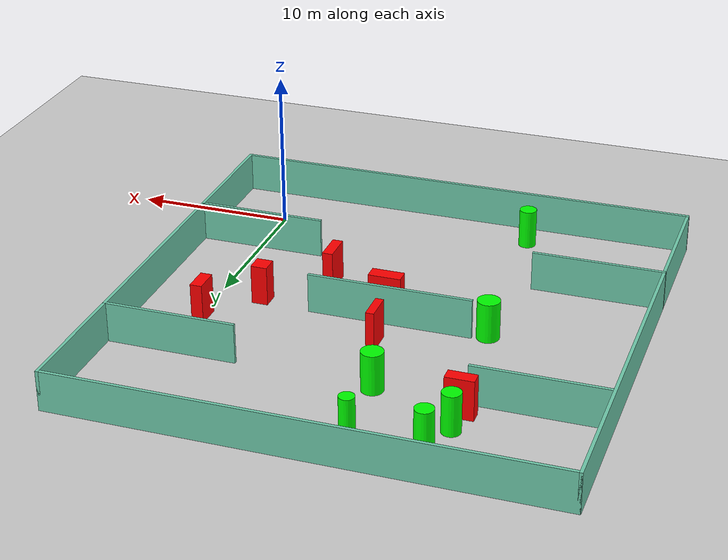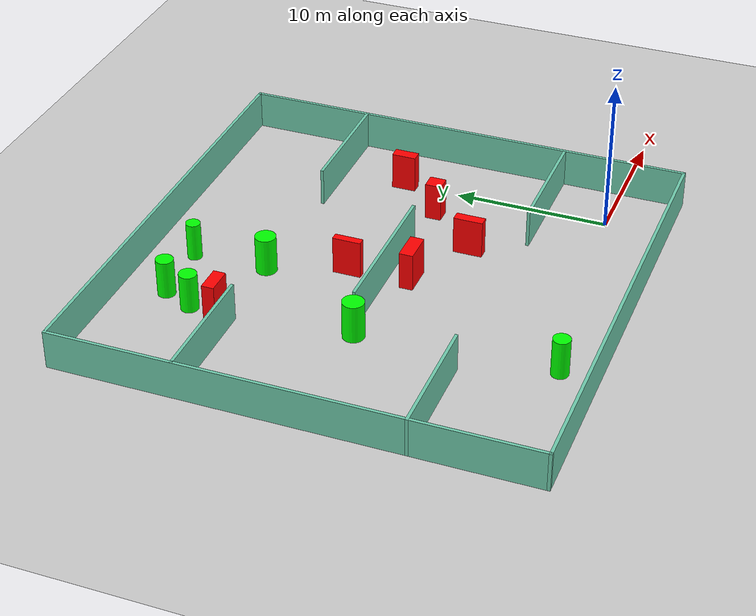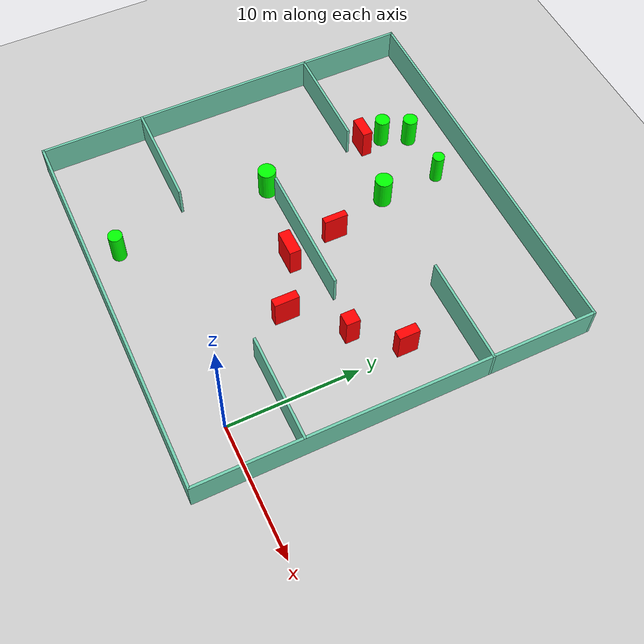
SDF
<sdf version="1.7">
 <world name="default">
  <light name="sun" type="directional">
   <pose>0 0 10 0 -0 0</pose>
   <diffuse>0.8 0.8 0.8 1</diffuse>
   <specular>0.2 0.2 0.2 1</specular>
   <attenuation>
    <range>1000</range>
    <constant>0.9</constant>
    <linear>0.01</linear>
    <quadratic>0.001</quadratic>
   </attenuation>
   <direction>-0.5 0.1 -0.9</direction>
   <spot><inner_angle>0</inner_angle><outer_angle>0</outer_angle><falloff>0</falloff></spot>
  </light>
  <model name="ground_plane">
   <static>1</static>
   <link name="link">
    <collision name="collision">
     <geometry><plane><normal>0 0 1</normal><size>100 100</size></plane></geometry>
     <surface>
      <contact><collide_bitmask>65535</collide_bitmask></contact>
      <friction><ode><mu>100</mu><mu2>50</mu2></ode></friction>
     </surface>
    </collision>
    <visual name="visual">
     <cast_shadows>0</cast_shadows>
     <geometry><plane><normal>0 0 1</normal><size>100 100</size></plane></geometry>
     <material>
      <script><uri>file://media/materials/scripts/gazebo.material</uri><name>Gazebo/Grey</name></script>
     </material>
    </visual>
   </link>
  </model>
  <gravity>0 0 -9.8</gravity>
  <magnetic_field>6e-06 2.3e-05 -4.2e-05</magnetic_field>
  <atmosphere type="adiabatic"/>
  <physics type="ode">
   <max_step_size>0.001</max_step_size>
   <real_time_factor>1</real_time_factor>
   <real_time_update_rate>1000</real_time_update_rate>
  </physics>
  <scene><ambient>0.4 0.4 0.4 1</ambient><background>0.7 0.7 0.7 1</background><shadows>1</shadows></scene>
  <spherical_coordinates>
   <surface_model>EARTH_WGS84</surface_model>
   <latitude_deg>0</latitude_deg>
   <longitude_deg>0</longitude_deg>
   <elevation>0</elevation>
   <heading_deg>0</heading_deg>
  </spherical_coordinates>
  <model name="my_base_walls">
   <link name="Wall_10">
    <collision name="Wall_10_Collision">
     <geometry><box><size>8.2 0.2 2.5</size></box></geometry>
     <pose>0 0 1.25 0 -0 0</pose>
    </collision>
    <visual name="Wall_10_Visual">
     <pose>0 0 1.25 0 -0 0</pose>
     <geometry><box><size>8.2 0.2 2.5</size></box></geometry>
     <material>
      <script><uri>file://media/materials/scripts/gazebo.material</uri><name>Gazebo/Grey</name></script>
      <ambient>0.435294 0.796078 0.67451 1</ambient>
     </material>
     <meta><layer>0</layer></meta>
    </visual>
    <pose>-11 -7 0 0 -0 0</pose>
   </link>
   <link name="Wall_12">
    <collision name="Wall_12_Collision">
     <geometry><box><size>8.2 0.2 2.5</size></box></geometry>
     <pose>0 0 1.25 0 -0 0</pose>
    </collision>
    <visual name="Wall_12_Visual">
     <pose>0 0 1.25 0 -0 0</pose>
     <geometry><box><size>8.2 0.2 2.5</size></box></geometry>
     <material>
      <script><uri>file://media/materials/scripts/gazebo.material</uri><name>Gazebo/Grey</name></script>
      <ambient>0.435294 0.796078 0.67451 1</ambient>
     </material>
     <meta><layer>0</layer></meta>
    </visual>
    <pose>-11 7 0 0 -0 0</pose>
   </link>
   <link name="Wall_14">
    <collision name="Wall_14_Collision">
     <geometry><box><size>8.2 0.2 2.5</size></box></geometry>
     <pose>0 0 1.25 0 -0 0</pose>
    </collision>
    <visual name="Wall_14_Visual">
     <pose>0 0 1.25 0 -0 0</pose>
     <geometry><box><size>8.2 0.2 2.5</size></box></geometry>
     <material>
      <script><uri>file://media/materials/scripts/gazebo.material</uri><name>Gazebo/Grey</name></script>
      <ambient>0.435294 0.796078 0.67451 1</ambient>
     </material>
     <meta><layer>0</layer></meta>
    </visual>
    <pose>11 7 0 0 -0 3.14159</pose>
   </link>
   <link name="Wall_16">
    <collision name="Wall_16_Collision">
     <geometry><box><size>10.2 0.2 2.5</size></box></geometry>
     <pose>0 0 1.25 0 -0 0</pose>
    </collision>
    <visual name="Wall_16_Visual">
     <pose>0 0 1.25 0 -0 0</pose>
     <geometry><box><size>10.2 0.2 2.5</size></box></geometry>
     <material>
      <script><uri>file://media/materials/scripts/gazebo.material</uri><name>Gazebo/Grey</name></script>
      <ambient>0.435294 0.796078 0.67451 1</ambient>
     </material>
     <meta><layer>0</layer></meta>
    </visual>
    <pose>0 0 0 0 -0 3.14159</pose>
   </link>
   <link name="Wall_2">
    <collision name="Wall_2_Collision">
     <geometry><box><size>30.2 0.2 2.5</size></box></geometry>
     <pose>0 0 1.25 0 -0 0</pose>
    </collision>
    <visual name="Wall_2_Visual">
     <pose>0 0 1.25 0 -0 0</pose>
     <geometry><box><size>30.2 0.2 2.5</size></box></geometry>
     <material>
      <script><uri>file://media/materials/scripts/gazebo.material</uri><name>Gazebo/Grey</name></script>
      <ambient>0.435294 0.796078 0.67451 1</ambient>
     </material>
     <meta><layer>0</layer></meta>
    </visual>
    <pose>0 -15 0 0 -0 3.14159</pose>
   </link>
   <link name="Wall_3">
    <collision name="Wall_3_Collision">
     <geometry><box><size>30.2 0.2 2.5</size></box></geometry>
     <pose>0 0 1.25 0 -0 0</pose>
    </collision>
    <visual name="Wall_3_Visual">
     <pose>0 0 1.25 0 -0 0</pose>
     <geometry><box><size>30.2 0.2 2.5</size></box></geometry>
     <material>
      <script><uri>file://media/materials/scripts/gazebo.material</uri><name>Gazebo/Grey</name></script>
      <ambient>0.435294 0.796078 0.67451 1</ambient>
     </material>
     <meta><layer>0</layer></meta>
    </visual>
    <pose>-15 0 0 0 -0 1.5708</pose>
   </link>
   <link name="Wall_4">
    <collision name="Wall_4_Collision">
     <geometry><box><size>30.2 0.2 2.5</size></box></geometry>
     <pose>0 0 1.25 0 -0 0</pose>
    </collision>
    <visual name="Wall_4_Visual">
     <pose>0 0 1.25 0 -0 0</pose>
     <geometry><box><size>30.2 0.2 2.5</size></box></geometry>
     <material>
      <script><uri>file://media/materials/scripts/gazebo.material</uri><name>Gazebo/Grey</name></script>
      <ambient>0.435294 0.796078 0.67451 1</ambient>
     </material>
     <meta><layer>0</layer></meta>
    </visual>
    <pose>0 15 0 0 -0 0</pose>
   </link>
   <link name="Wall_6">
    <collision name="Wall_6_Collision">
     <geometry><box><size>30.2 0.2 2.5</size></box></geometry>
     <pose>0 0 1.25 0 -0 0</pose>
    </collision>
    <visual name="Wall_6_Visual">
     <pose>0 0 1.25 0 -0 0</pose>
     <geometry><box><size>30.2 0.2 2.5</size></box></geometry>
     <material>
      <script><uri>file://media/materials/scripts/gazebo.material</uri><name>Gazebo/Grey</name></script>
      <ambient>0.435294 0.796078 0.67451 1</ambient>
     </material>
     <meta><layer>0</layer></meta>
    </visual>
    <pose>15 0 0 0 -0 1.5708</pose>
   </link>
   <link name="Wall_8">
    <collision name="Wall_8_Collision">
     <geometry><box><size>8.2 0.2 2.5</size></box></geometry>
     <pose>0 0 1.25 0 -0 0</pose>
    </collision>
    <visual name="Wall_8_Visual">
     <pose>0 0 1.25 0 -0 0</pose>
     <geometry><box><size>8.2 0.2 2.5</size></box></geometry>
     <material>
      <script><uri>file://media/materials/scripts/gazebo.material</uri><name>Gazebo/Grey</name></script>
      <ambient>0.435294 0.796078 0.67451 1</ambient>
     </material>
     <meta><layer>0</layer></meta>
    </visual>
    <pose>11 -7 0 0 -0 3.14159</pose>
   </link>
   <static>1</static>
   <pose>-11 11 0 0 -0 0</pose>
  </model>
  <model name="cylinder1">
   <static>1</static>
   <link name="link">
    <inertial>
     <mass>1</mass>
     <inertia><ixx>0.5</ixx><ixy>0</ixy><ixz>0</ixz><iyy>0.5</iyy><iyz>0</iyz><izz>1</izz></inertia>
    </inertial>
    <collision name="collision">
     <geometry><cylinder><radius>0.5723667406691992</radius><length>2.5</length></cylinder></geometry>
    </collision>
    <visual name="visual">
     <geometry><cylinder><radius>0.5723667406691992</radius><length>2.5</length></cylinder></geometry>
     <material>
      <ambient>0 1 0 1</ambient>
      <diffuse>0 1 0 1</diffuse>
      <specular>0.1 0.1 0.1 1</specular>
      <emissive>0 0 0 0</emissive>
     </material>
    </visual>
   </link>
   <pose>-17.83094878240328 20.956606415255205 1.25 0 0 0</pose>
  </model>
  <model name="cylinder2">
   <static>1</static>
   <link name="link">
    <inertial>
     <mass>1</mass>
     <inertia><ixx>0.5</ixx><ixy>0</ixy><ixz>0</ixz><iyy>0.5</iyy><iyz>0</iyz><izz>1</izz></inertia>
    </inertial>
    <collision name="collision">
     <geometry><cylinder><radius>0.5457131854601444</radius><length>2.5</length></cylinder></geometry>
    </collision>
    <visual name="visual">
     <geometry><cylinder><radius>0.5457131854601444</radius><length>2.5</length></cylinder></geometry>
     <material>
      <ambient>0 1 0 1</ambient>
      <diffuse>0 1 0 1</diffuse>
      <specular>0.1 0.1 0.1 1</specular>
      <emissive>0 0 0 0</emissive>
     </material>
    </visual>
   </link>
   <pose>-16.157404501856714 -1.7006996450574166 1.25 0 0 0</pose>
  </model>
  <model name="cylinder3">
   <static>1</static>
   <link name="link">
    <inertial>
     <mass>1</mass>
     <inertia><ixx>0.5</ixx><ixy>0</ixy><ixz>0</ixz><iyy>0.5</iyy><iyz>0</iyz><izz>1</izz></inertia>
    </inertial>
    <collision name="collision">
     <geometry><cylinder><radius>0.5649935560441588</radius><length>2.5</length></cylinder></geometry>
    </collision>
    <visual name="visual">
     <geometry><cylinder><radius>0.5649935560441588</radius><length>2.5</length></cylinder></geometry>
     <material>
      <ambient>0 1 0 1</ambient>
      <diffuse>0 1 0 1</diffuse>
      <specular>0.1 0.1 0.1 1</specular>
      <emissive>0 0 0 0</emissive>
     </material>
    </visual>
   </link>
   <pose>-16.937955296544807 22.9434609851686 1.25 0 0 0</pose>
  </model>
  <model name="cylinder4">
   <static>1</static>
   <link name="link">
    <inertial>
     <mass>1</mass>
     <inertia><ixx>0.5</ixx><ixy>0</ixy><ixz>0</ixz><iyy>0.5</iyy><iyz>0</iyz><izz>1</izz></inertia>
    </inertial>
    <collision name="collision">
     <geometry><cylinder><radius>0.6965615054128117</radius><length>2.5</length></cylinder></geometry>
    </collision>
    <visual name="visual">
     <geometry><cylinder><radius>0.6965615054128117</radius><length>2.5</length></cylinder></geometry>
     <material>
      <ambient>0 1 0 1</ambient>
      <diffuse>0 1 0 1</diffuse>
      <specular>0.1 0.1 0.1 1</specular>
      <emissive>0 0 0 0</emissive>
     </material>
    </visual>
   </link>
   <pose>-16.996791429069496 10.682363763615388 1.25 0 0 0</pose>
  </model>
  <model name="cylinder5">
   <static>1</static>
   <link name="link">
    <inertial>
     <mass>1</mass>
     <inertia><ixx>0.5</ixx><ixy>0</ixy><ixz>0</ixz><iyy>0.5</iyy><iyz>0</iyz><izz>1</izz></inertia>
    </inertial>
    <collision name="collision">
     <geometry><cylinder><radius>0.4653747245758605</radius><length>2.5</length></cylinder></geometry>
    </collision>
    <visual name="visual">
     <geometry><cylinder><radius>0.4653747245758605</radius><length>2.5</length></cylinder></geometry>
     <material>
      <ambient>0 1 0 1</ambient>
      <diffuse>0 1 0 1</diffuse>
      <specular>0.1 0.1 0.1 1</specular>
      <emissive>0 0 0 0</emissive>
     </material>
    </visual>
   </link>
   <pose>-12.691642339403028 23.097410796167026 1.25 0 0 0</pose>
  </model>
  <model name="cylinder6">
   <static>1</static>
   <link name="link">
    <inertial>
     <mass>1</mass>
     <inertia><ixx>0.5</ixx><ixy>0</ixy><ixz>0</ixz><iyy>0.5</iyy><iyz>0</iyz><izz>1</izz></inertia>
    </inertial>
    <collision name="collision">
     <geometry><cylinder><radius>0.6730894793537588</radius><length>2.5</length></cylinder></geometry>
    </collision>
    <visual name="visual">
     <geometry><cylinder><radius>0.6730894793537588</radius><length>2.5</length></cylinder></geometry>
     <material>
      <ambient>0 1 0 1</ambient>
      <diffuse>0 1 0 1</diffuse>
      <specular>0.1 0.1 0.1 1</specular>
      <emissive>0 0 0 0</emissive>
     </material>
    </visual>
   </link>
   <pose>-12.461182631007834 18.289677967634386 1.25 0 0 0</pose>
  </model>
  <model name="box1">
   <static>1</static>
   <link name="link">
    <inertial>
     <mass>1</mass>
     <inertia><ixx>0.083</ixx><ixy>0</ixy><ixz>0</ixz><iyy>0.083</iyy><iyz>0</iyz><izz>0.083</izz></inertia>
    </inertial>
    <collision name="collision">
     <geometry><box><size>0.7337166107390919 1.583869188843074 2.5</size></box></geometry>
    </collision>
    <visual name="visual">
     <geometry><box><size>0.7337166107390919 1.583869188843074 2.5</size></box></geometry>
     <material>
      <ambient>1 0 0 1</ambient>
      <diffuse>1 0 0 1</diffuse>
      <specular>0.1 0.1 0.1 1</specular>
      <emissive>0 0 0 0</emissive>
     </material>
    </visual>
    <sensor name="my_contact" type="contact">
     <contact><collision>box_collision</collision><topic>__default_topic__</topic></contact>
    </sensor>
   </link>
   <pose>-0.14332565108002626 13.6748116756428 1.25 0 0 0</pose>
  </model>
  <model name="box2">
   <static>1</static>
   <link name="link">
    <inertial>
     <mass>1</mass>
     <inertia><ixx>0.083</ixx><ixy>0</ixy><ixz>0</ixz><iyy>0.083</iyy><iyz>0</iyz><izz>0.083</izz></inertia>
    </inertial>
    <collision name="collision">
     <geometry><box><size>0.6491557637038134 1.8970989021414004 2.5</size></box></geometry>
    </collision>
    <visual name="visual">
     <geometry><box><size>0.6491557637038134 1.8970989021414004 2.5</size></box></geometry>
     <material>
      <ambient>1 0 0 1</ambient>
      <diffuse>1 0 0 1</diffuse>
      <specular>0.1 0.1 0.1 1</specular>
      <emissive>0 0 0 0</emissive>
     </material>
    </visual>
    <sensor name="my_contact" type="contact">
     <contact><collision>box_collision</collision><topic>__default_topic__</topic></contact>
    </sensor>
   </link>
   <pose>-6.075312219863648 7.224688903210094 1.25 0 0 0</pose>
  </model>
  <model name="box3">
   <static>1</static>
   <link name="link">
    <inertial>
     <mass>1</mass>
     <inertia><ixx>0.083</ixx><ixy>0</ixy><ixz>0</ixz><iyy>0.083</iyy><iyz>0</iyz><izz>0.083</izz></inertia>
    </inertial>
    <collision name="collision">
     <geometry><box><size>0.5079278073175146 1.8235400203558747 2.5</size></box></geometry>
    </collision>
    <visual name="visual">
     <geometry><box><size>0.5079278073175146 1.8235400203558747 2.5</size></box></geometry>
     <material>
      <ambient>1 0 0 1</ambient>
      <diffuse>1 0 0 1</diffuse>
      <specular>0.1 0.1 0.1 1</specular>
      <emissive>0 0 0 0</emissive>
     </material>
    </visual>
    <sensor name="my_contact" type="contact">
     <contact><collision>box_collision</collision><topic>__default_topic__</topic></contact>
    </sensor>
   </link>
   <pose>-10.943553622067522 13.44969658559911 1.25 0 0 0</pose>
  </model>
  <model name="box4">
   <static>1</static>
   <link name="link">
    <inertial>
     <mass>1</mass>
     <inertia><ixx>0.083</ixx><ixy>0</ixy><ixz>0</ixz><iyy>0.083</iyy><iyz>0</iyz><izz>0.083</izz></inertia>
    </inertial>
    <collision name="collision">
     <geometry><box><size>1.0142085284653186 1.066945368869602 2.5</size></box></geometry>
    </collision>
    <visual name="visual">
     <geometry><box><size>1.0142085284653186 1.066945368869602 2.5</size></box></geometry>
     <material>
      <ambient>1 0 0 1</ambient>
      <diffuse>1 0 0 1</diffuse>
      <specular>0.1 0.1 0.1 1</specular>
      <emissive>0 0 0 0</emissive>
     </material>
    </visual>
    <sensor name="my_contact" type="contact">
     <contact><collision>box_collision</collision><topic>__default_topic__</topic></contact>
    </sensor>
   </link>
   <pose>-2.7789498844710785 10.630955255262045 1.25 0 0 0</pose>
  </model>
  <model name="box5">
   <static>1</static>
   <link name="link">
    <inertial>
     <mass>1</mass>
     <inertia><ixx>0.083</ixx><ixy>0</ixy><ixz>0</ixz><iyy>0.083</iyy><iyz>0</iyz><izz>0.083</izz></inertia>
    </inertial>
    <collision name="collision">
     <geometry><box><size>1.726106518678275 0.7895177427278603 2.5</size></box></geometry>
    </collision>
    <visual name="visual">
     <geometry><box><size>1.726106518678275 0.7895177427278603 2.5</size></box></geometry>
     <material>
      <ambient>1 0 0 1</ambient>
      <diffuse>1 0 0 1</diffuse>
      <specular>0.1 0.1 0.1 1</specular>
      <emissive>0 0 0 0</emissive>
     </material>
    </visual>
    <sensor name="my_contact" type="contact">
     <contact><collision>box_collision</collision><topic>__default_topic__</topic></contact>
    </sensor>
   </link>
   <pose>-17.850234131762793 19.245186922229664 1.25 0 0 0</pose>
  </model>
  <model name="box6">
   <static>1</static>
   <link name="link">
    <inertial>
     <mass>1</mass>
     <inertia><ixx>0.083</ixx><ixy>0</ixy><ixz>0</ixz><iyy>0.083</iyy><iyz>0</iyz><izz>0.083</izz></inertia>
    </inertial>
    <collision name="collision">
     <geometry><box><size>2.0256858739214723 0.8887752558560162 2.5</size></box></geometry>
    </collision>
    <visual name="visual">
     <geometry><box><size>2.0256858739214723 0.8887752558560162 2.5</size></box></geometry>
     <material>
      <ambient>1 0 0 1</ambient>
      <diffuse>1 0 0 1</diffuse>
      <specular>0.1 0.1 0.1 1</specular>
      <emissive>0 0 0 0</emissive>
     </material>
    </visual>
    <sensor name="my_contact" type="contact">
     <contact><collision>box_collision</collision><topic>__default_topic__</topic></contact>
    </sensor>
   </link>
   <pose>-10.329844114247742 9.50804335925445 1.25 0 0 0</pose>
  </model>
 </world>
</sdf>
